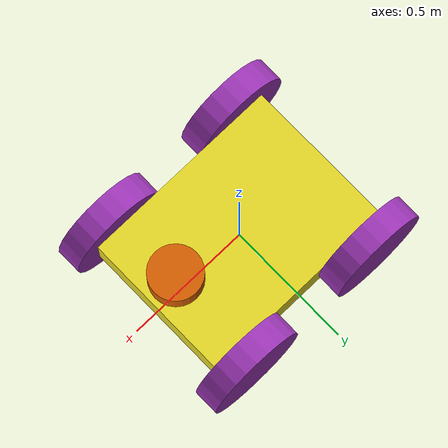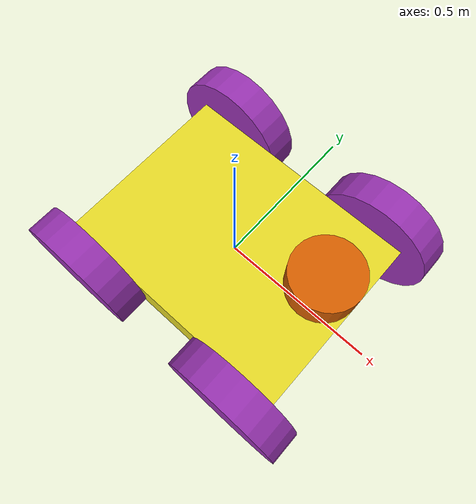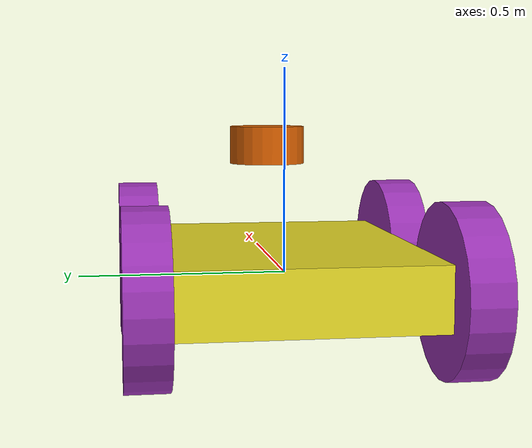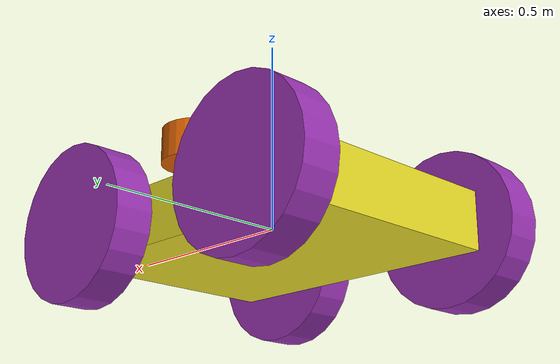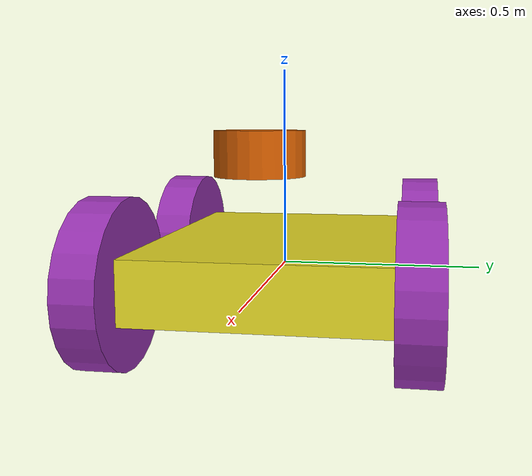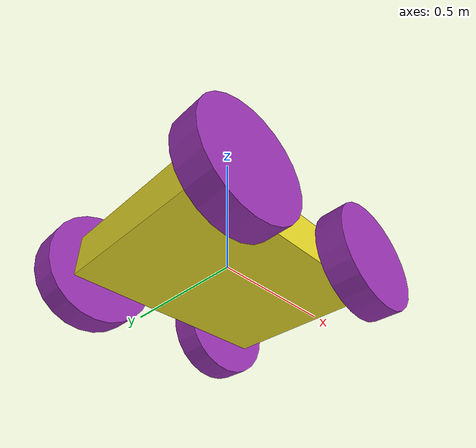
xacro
<?xml version="1.0"?>
<robot name ="differential_drive_robot" xmlns:xacro ="http://www.ros.org/wiki/xacro">
    <!-- Body Dimension -->
<xacro:property name="body_link_x_dim" value="0.8"/>
<xacro:property name="body_link_y_dim" value="0.6"/>
<xacro:property name="body_link_z_dim" value="0.15"/>

<!-- wheel dimension-->

<xacro:property name="wheel_link_radius" value="0.2"/>
<xacro:property name="wheel_link_length" value="0.1"/>
<xacro:property name="wheel_link_z_location" value="0.1"/>

<xacro:property name="body_density" value="60.0"/>
<xacro:property name="wheel_density" value="80.0"/>
<!--pi constant -->
<xacro:property name="pi_const" value="3.1415"/>
<!-- Robot body and wheel mass-->

<xacro:property name="body_mass" value="${body_density * body_link_x_dim*body_link_y_dim*body_link_z_dim}"/>
<xacro:property name="wheel_mass" value="${wheel_density * pi_const*wheel_link_radius*wheel_link_radius*wheel_link_length}"/>

<!-- Moments of INertia -->
 <xacro:property name="Iz_Wheel" value="${0.5*  wheel_mass*wheel_link_radius * wheel_link_radius}"/>
 <xacro:property name="I_wheel" value="${(1.0/12.0)*wheel_mass*(3.0 * wheel_link_radius*wheel_link_radius + wheel_link_length * wheel_link_length)}"/>

 <!-- THis macro defines the complete inertial section of the wheel-->
  <xacro:macro name="inertia_wheel">
    <inertial>

       <origin xyz="0 0 0" rpy="0 0 0"/>
       <mass value="${wheel_mass}"/>
      <inertia ixx="${I_wheel}"  ixy="0.0" ixz="0.0"
         iyy="${I_wheel}"  iyz="0.0"
         izz="${Iz_Wheel}"/>

    </inertial>
  </xacro:macro>

  <!-- Over Here  we include the file that defines extra Gazebo options and motion control drivers -->
   <xacro:include filename="$(find cpp_wcl )/model/robot.gazebo"/>

<link name="base_link">
    <visual>
        <geometry><box size="${body_link_x_dim} ${body_link_y_dim} ${body_link_z_dim}"/></geometry>
        <origin xyz="0 0 0" rpy="0 0 0"/>
    </visual>
    <collision>
        <geometry><box size="${body_link_x_dim} ${body_link_y_dim} ${body_link_z_dim}"/></geometry>
        <origin xyz="0 0 0" rpy="0 0 0"/>
    </collision>
    <inertial>
        <origin xyz="0 0 0" rpy="0 0 0"/>
        <mass value="${body_mass}"/>
        <inertia
            ixx="${(1.0/12.0)*body_mass*(body_link_y_dim*body_link_y_dim + body_link_z_dim*body_link_z_dim)}"
            ixy="0.0" ixz="0.0"
            iyy="${(1.0/12.0)*body_mass*(body_link_x_dim*body_link_x_dim + body_link_z_dim*body_link_z_dim)}"
            iyz="0.0"
            izz="${(1.0/12.0)*body_mass*(body_link_y_dim*body_link_y_dim + body_link_x_dim*body_link_x_dim)}"/>
    </inertial>
</link>

<!-- Start : Back Right wheel -->
<joint name="wheel1_joint" type="continuous">
    <parent link="base_link"/>
    <child link="wheel1_link"/>
    <origin xyz="-0.3 -0.35 0.0" rpy="0 0 0"/>
    <axis xyz="0 1 0"/>

</joint>
<link name="wheel1_link">
    <visual>
        <geometry>
            <cylinder length="${wheel_link_length}" radius="${wheel_link_radius}"/>

        </geometry>
        <origin xyz="0.0 0.0 0.0" rpy="1.5700 0.0 0.0"/>

</visual>

    <collision>
        <geometry>
            <cylinder length="${wheel_link_length}" radius="${wheel_link_radius}"/>

        </geometry>
        <origin xyz="0.0 0.0 0.0" rpy="1.5700 0.0 0.0"/>

    </collision>
    <xacro:inertia_wheel/>
    </link>

    <!-- Start : Back left wheel -->

     <joint name="wheel2_joint" type="continuous">
    <parent link="base_link"/>
    <child link="wheel2_link"/>
    <origin xyz="-0.3 0.35 0.0" rpy="0 0 0"/>
    <axis xyz="0 1 0"/>
</joint>
<link name="wheel2_link">
    <visual>
        <geometry>
            <cylinder length="${wheel_link_length}" radius="${wheel_link_radius}"/>

        </geometry>
        <origin xyz="0.0 0.0 0.0" rpy="1.5700 0.0 0.0"/>

</visual>

    <collision>
        <geometry>
            <cylinder length="${wheel_link_length}" radius ="${wheel_link_radius}"/>

        </geometry>
        <origin xyz="0.0 0.0 0.0" rpy="1.5700 0.0 0.0"/>

    </collision>
    <xacro:inertia_wheel/>
    </link>

     <!-- Start : front right wheel_3 -->

<joint name="wheel3_joint" type="continuous">
    <parent link="base_link"/>
    <child link="wheel3_link"/>
    <origin xyz="0.3 -0.35 0.0" rpy="0 0 0"/>
    <axis xyz="0 1 0"/>

</joint>
<link name="wheel3_link">
    <visual>
        <geometry>
            <cylinder length="${wheel_link_length}" radius="${wheel_link_radius}"/>

        </geometry>
        <origin xyz="0.0 0.0 0.0" rpy="1.5700 0.0 0.0"/>

</visual>

    <collision>
        <geometry>
            <cylinder length="${wheel_link_length}" radius ="${wheel_link_radius}"/>

        </geometry>
        <origin xyz="0.0 0.0 0.0" rpy="1.5700 0.0 0.0"/>

    </collision>
    <xacro:inertia_wheel/>
    </link>

     <!-- Start : front left wheel 4 -->

     <joint name="wheel4_joint" type="continuous">
    <parent link="base_link"/>
    <child link="wheel4_link"/>
    <origin xyz="0.3 0.35 0.0" rpy="0 0 0"/>
    <axis xyz="0 1 0"/>

</joint>
<link name="wheel4_link">
    <visual>
        <geometry>
            <cylinder length="${wheel_link_length}" radius="${wheel_link_radius}"/>

        </geometry>
        <origin xyz="0.0 0.0 0.0" rpy="1.5700 0.0 0.0"/>

</visual>

    <collision>
        <geometry>
            <cylinder length="${wheel_link_length}" radius="${wheel_link_radius}"/>

        </geometry>
        <origin xyz="0.0 0.0 0.0" rpy="1.5700 0.0 0.0"/>

    </collision>
    <xacro:inertia_wheel/>
    </link>

    <!-- LIDAR-->
     <joint name="lidar_joint" type="fixed">
        <origin xyz="0.3 0.0 0.25" rpy="0 0 0"/>
        <parent link="base_link"/>
        <child link="lidar_link"/>

     </joint>
    <link name='lidar_link'>
        <visual>
            <origin xyz="0 0 0.05" rpy="0 0 0 "/>
            <geometry>
                <cylinder radius="0.1" length="0.1"/>

            </geometry>

        </visual>

        <collision>
            <origin xyz="0.0 0.0 0.05" rpy="0.0 0.0 0.0"/>
            <geometry>
                <cylinder radius="0.1" length="0.1"/>

            </geometry>

        </collision>

        <inertial>
            <mass value="1e-6"/>
            <origin xyz="0 0 0" rpy="0 0 0 "/>
            <inertia ixx="1e-6" ixy="0" ixz="0"
                  iyy="1e-6" iyz="0" izz="1e-6" />

        </inertial>

    </link>

    <!-- IMU -->
    <joint name="imu_joint" type="fixed">
        <origin xyz="0 0 0" rpy="0 0 0"/>
        <parent link="base_link"/>
        <child link="imu_link"/>
    </joint>

    <link name="imu_link">
        <visual>
            <geometry>
            <box size="0.05 0.05 0.05"/>
        </geometry>
        <origin xyz="0 0 0" rpy="0 0 0"/>

        </visual>
        <collision>
        <geometry>
            <box size="0.05 0.05 0.05"/>
        </geometry>
        <origin xyz="0 0 0" rpy="0 0 0"/>
    </collision>

    <inertial>
        <mass value="1e-6"/>
        <origin xyz="0 0 0" rpy="0 0 0"/>
        <inertia ixx="1e-6" ixy="0" ixz="0"
                 iyy="1e-6" iyz="0" izz="1e-6"/>
    </inertial>
    </link>

    </robot>
